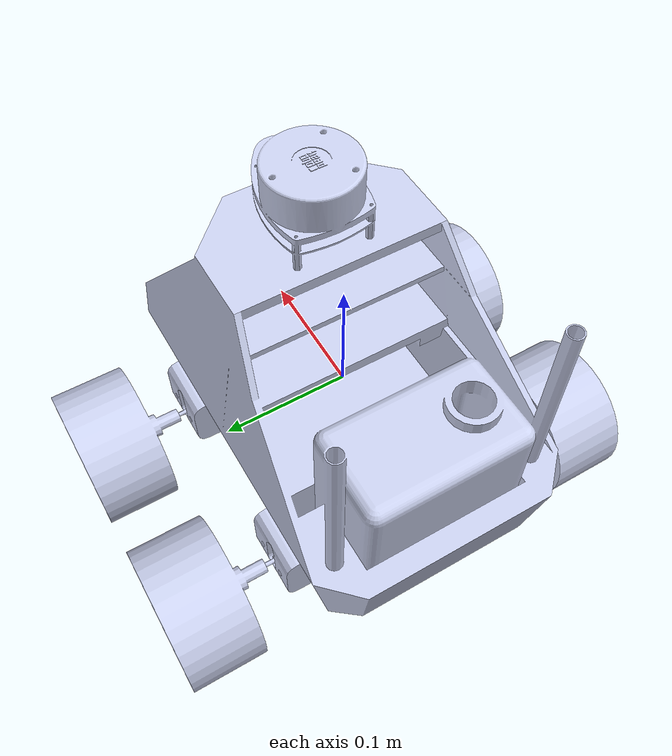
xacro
<?xml version="1.0"?>

<robot xmlns:xacro="http://www.ros.org/wiki/xacro" >

   <!-- BASE LINK -->

    <link name="base_link">

    </link>

    <!-- BASE_FOOTPRINT LINK -->

    <joint name="base_footprint_joint" type="fixed">
        <parent link="base_link"/>
        <child link="base_footprint"/>
        <origin xyz="0 0 0" rpy="0 0 0"/>
    </joint>

    <link name="base_footprint">
    </link>

  <joint name="chassis_joint" type="fixed">
        <parent link="base_link"/>
        <child link="chassis_link"/>
        <origin xyz="0 0 0"/>
    </joint>

  <link
    name="chassis_link">
    <inertial>
      <origin
        xyz="-0.0024404 -2.0665E-05 -0.036093"
        rpy="0 0 0" />
      <mass
        value="3.563" />
      <inertia
        ixx="0.019027"
        ixy="-2.526E-10"
        ixz="0.00063662"
        iyy="0.011957"
        iyz="6.1119E-06"
        izz="0.020595" />
    </inertial>
    <visual>
      <origin
        xyz="0 0 0"
        rpy="0 0 0" />
      <geometry>
        <mesh
          filename="package://robo2/meshes/base_link.STL" />
      </geometry>
      <material
        name="">
        <color
          rgba="0.79216 0.81961 0.93333 1" />
      </material>
    </visual>
    <collision>
      <origin
        xyz="0 0 0"
        rpy="0 0 0" />
      <geometry>
        <mesh
          filename="package://robo2/meshes/base_link.STL" />
      </geometry>
    </collision>
  </link>

  <link
    name="rueda_izq_arriba">
    <inertial>
      <origin
        xyz="2.7756E-17 2.7756E-17 -0.031817"
        rpy="0 0 0" />
      <mass
        value="0.72984" />
      <inertia
        ixx="0.00091283"
        ixy="-4.1103E-20"
        ixz="1.43E-20"
        iyy="0.00091283"
        iyz="-5.6001E-20"
        izz="0.001326" />
    </inertial>
    <visual>
      <origin
        xyz="0 0 0"
        rpy="0 0 0" />
      <geometry>
        <mesh
          filename="package://robo2/meshes/rueda_izq_arriba.STL" />
      </geometry>
      <material
        name="">
        <color
          rgba="0.79216 0.81961 0.93333 1" />
      </material>
    </visual>
    <collision>
      <origin
        xyz="0 0 0"
        rpy="0 0 0" />
      <geometry>
        <mesh
          filename="package://robo2/meshes/rueda_izq_arriba.STL" />
      </geometry>
    </collision>
  </link>
  <joint
    name="rueda_izq_arriba_joint"
    type="continuous">
    <origin
      xyz="0.10092 0.20435 -0.107"
      rpy="-1.5708 0 0" />
    <parent
      link="chassis_link" />
    <child
      link="rueda_izq_arriba" />
    <axis
      xyz="0 0 1" />
  </joint>
  <link
    name="rueda_izq_abajo">
    <inertial>
      <origin
        xyz="1.3878E-17 -6.9389E-18 -0.031817"
        rpy="0 0 0" />
      <mass
        value="0.72984" />
      <inertia
        ixx="0.00091283"
        ixy="1.3848E-21"
        ixz="4.073E-21"
        iyy="0.00091283"
        iyz="2.5739E-20"
        izz="0.001326" />
    </inertial>
    <visual>
      <origin
        xyz="0 0 0"
        rpy="0 0 0" />
      <geometry>
        <mesh
          filename="package://robo2/meshes/rueda_izq_abajo.STL" />
      </geometry>
      <material
        name="">
        <color
          rgba="0.79216 0.81961 0.93333 1" />
      </material>
    </visual>
    <collision>
      <origin
        xyz="0 0 0"
        rpy="0 0 0" />
      <geometry>
        <mesh
          filename="package://robo2/meshes/rueda_izq_abajo.STL" />
      </geometry>
    </collision>
  </link>
  <joint
    name="rueda_izq_abajo_joint"
    type="continuous">
    <origin
      xyz="-0.065951 0.20435 -0.107"
      rpy="-1.5708 0 0" />
    <parent
      link="chassis_link" />
    <child
      link="rueda_izq_abajo" />
    <axis
      xyz="0 0 1" />
  </joint>
  <link
    name="rueda_der_abajo">
    <inertial>
      <origin
        xyz="-9.7145E-17 -6.9389E-18 -0.031817"
        rpy="0 0 0" />
      <mass
        value="0.72984" />
      <inertia
        ixx="0.00091283"
        ixy="1.6304E-19"
        ixz="-5.3591E-20"
        iyy="0.00091283"
        iyz="-9.375E-20"
        izz="0.001326" />
    </inertial>
    <visual>
      <origin
        xyz="0 0 0"
        rpy="0 0 0" />
      <geometry>
        <mesh
          filename="package://robo2/meshes/rueda_der_abajo.STL" />
      </geometry>
      <material
        name="">
        <color
          rgba="0.79216 0.81961 0.93333 1" />
      </material>
    </visual>
    <collision>
      <origin
        xyz="0 0 0"
        rpy="0 0 0" />
      <geometry>
        <mesh
          filename="package://robo2/meshes/rueda_der_abajo.STL" />
      </geometry>
    </collision>
  </link>
  <joint
    name="rueda_der_abajo_joint"
    type="continuous">
    <origin
      xyz="-0.065951 -0.20435 -0.107"
      rpy="1.5708 0 0" />
    <parent
      link="chassis_link" />
    <child
      link="rueda_der_abajo" />
    <axis
      xyz="0 0 -1" />
  </joint>
  <link
    name="rueda_der_arriba">
    <inertial>
      <origin
        xyz="0 -6.9389E-18 -0.031817"
        rpy="0 0 0" />
      <mass
        value="0.72984" />
      <inertia
        ixx="0.00091283"
        ixy="-7.5158E-20"
        ixz="-3.6325E-20"
        iyy="0.00091283"
        iyz="-1.7327E-20"
        izz="0.001326" />
    </inertial>
    <visual>
      <origin
        xyz="0 0 0"
        rpy="0 0 0" />
      <geometry>
        <mesh
          filename="package://robo2/meshes/rueda_der_arriba.STL" />
      </geometry>
      <material
        name="">
        <color
          rgba="0.79216 0.81961 0.93333 1" />
      </material>
    </visual>
    <collision>
      <origin
        xyz="0 0 0"
        rpy="0 0 0" />
      <geometry>
        <mesh
          filename="package://robo2/meshes/rueda_der_arriba.STL" />
      </geometry>
    </collision>
  </link>
  <joint
    name="rueda_der_arriba_joint"
    type="continuous">
    <origin
      xyz="0.10092 -0.20435 -0.107"
      rpy="1.5708 0 0" />
    <parent
      link="chassis_link" />
    <child
      link="rueda_der_arriba" />
    <axis
      xyz="0 0 -1" />
  </joint>
  <link
    name="lidar">
    <inertial>
      <origin
        xyz="-0.0074835 -9.1926E-05 0.010668"
        rpy="0 0 0" />
      <mass
        value="1.3308" />
      <inertia
        ixx="0.00061492"
        ixy="-8.0198E-07"
        ixz="0.00015824"
        iyy="0.0009607"
        iyz="-3.0916E-06"
        izz="0.0010982" />
    </inertial>
    <visual>
      <origin
        xyz="0 0 0"
        rpy="0 0 0" />
      <geometry>
        <mesh
          filename="package://robo2/meshes/lidar.STL" />
      </geometry>
      <material
        name="">
        <color
          rgba="0.79216 0.81961 0.93333 1" />
      </material>
    </visual>
    <collision>
      <origin
        xyz="0 0 0"
        rpy="0 0 0" />
      <geometry>
        <mesh
          filename="package://robo2/meshes/lidar.STL" />
      </geometry>
    </collision>
  </link>
  <joint
    name="lidar_joint"
    type="fixed">
    <origin
      xyz="0.056196 0 0.1546"
      rpy="0 0 0" />
    <parent
      link="chassis_link" />
    <child
      link="lidar" />
    <axis
      xyz="0 0 0" />
    <limit
      lower="0"
      upper="0"
      effort="0"
      velocity="0" />
  </joint>

</robot>
